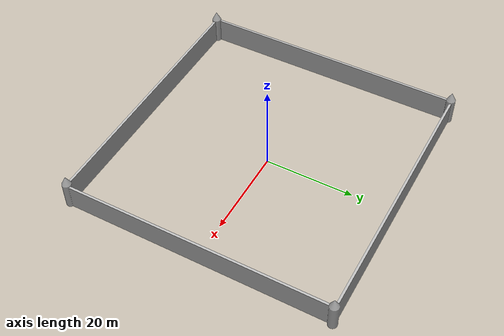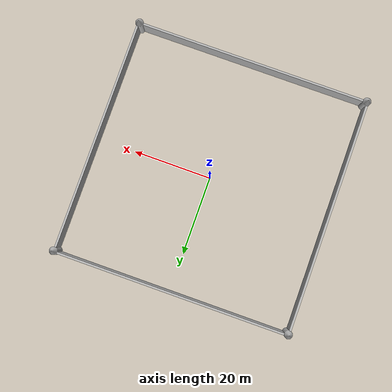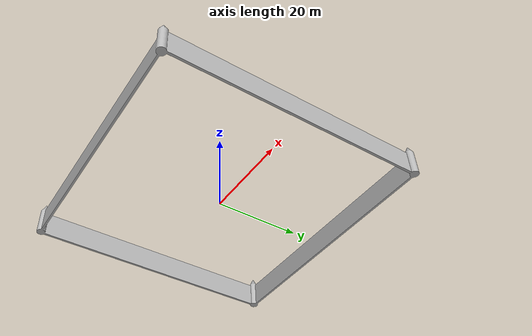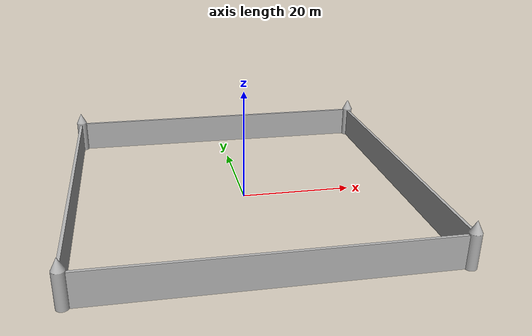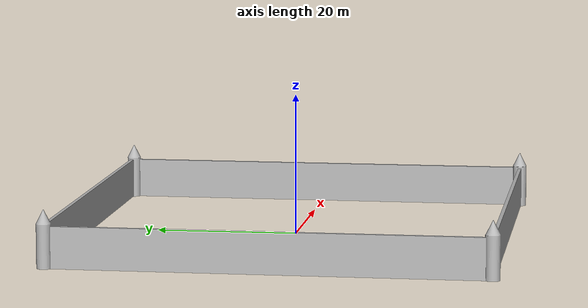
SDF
<?xml version="1.0"?>
<sdf version="1.9">
  <model name="velmobil_gym">
    <static>true</static>
    <link name="link">
      <visual name="visual">
        <geometry>
          <mesh>
            <uri>velmobil_gym.obj</uri>
          </mesh>
        </geometry>
      </visual>
      <collision name="collision">
        <geometry>
          <mesh>
            <uri>velmobil_gym.obj</uri>
          </mesh>
        </geometry>
      </collision>
    </link>
  </model>
</sdf>
